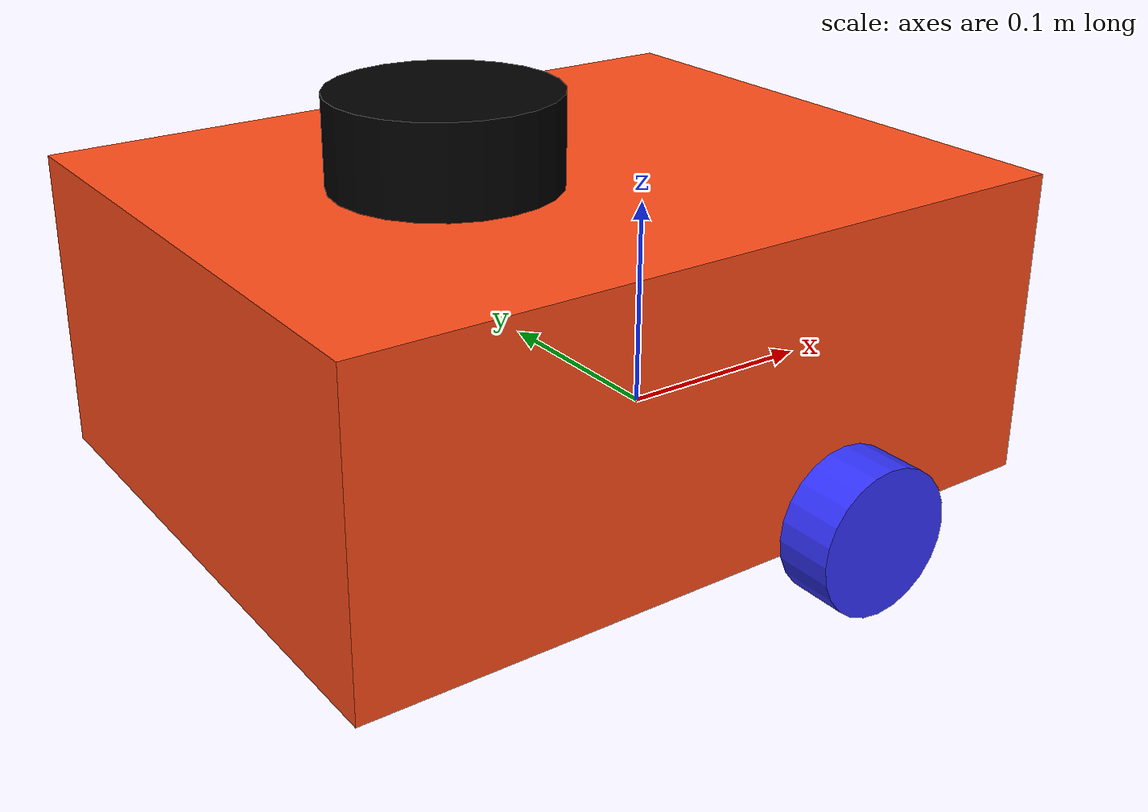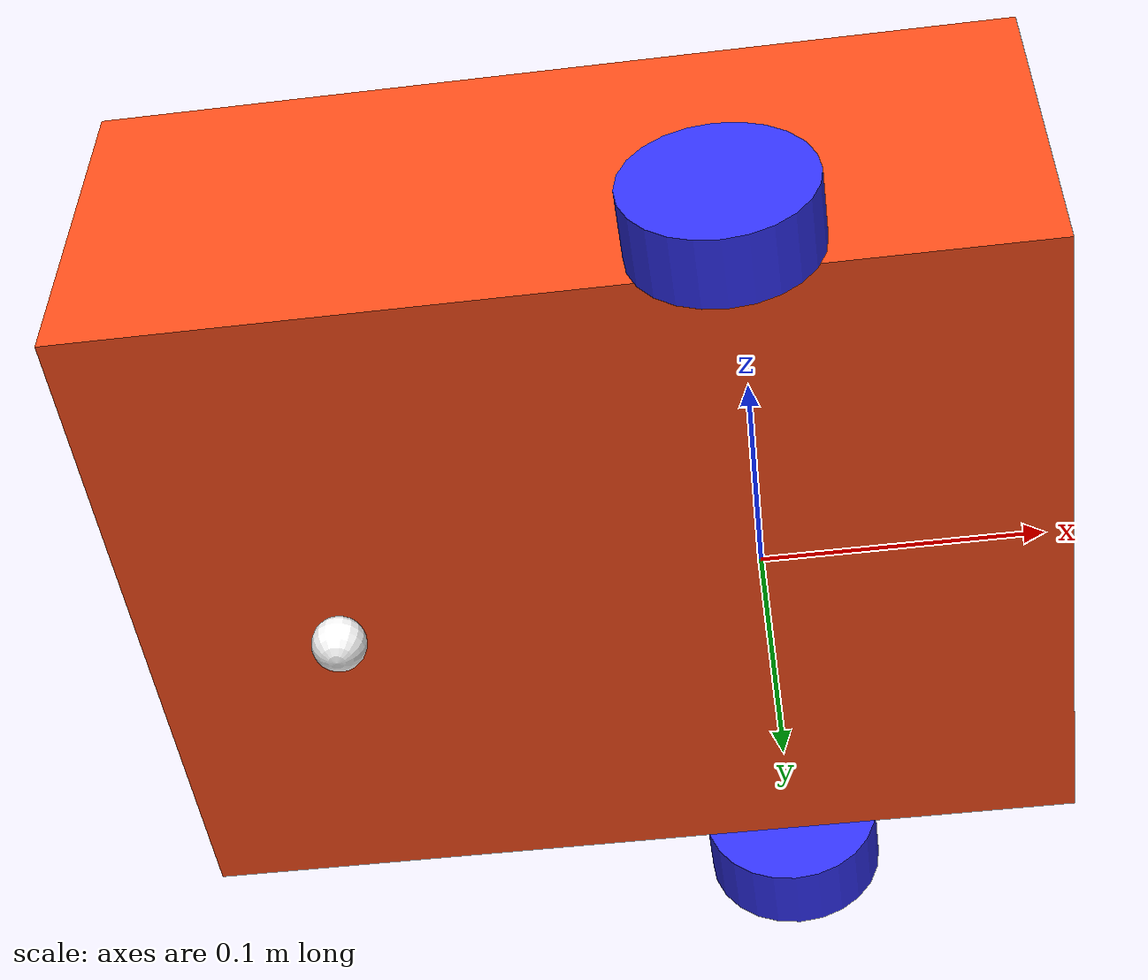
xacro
<?xml version="1.0"?>
<robot xmlns:xacro="http://www.ros.org/wiki/xacro" name="wheel_box">
    <xacro:arg name="robot_name" default="X" />
    <xacro:arg name="use_ros2_control" default="true" />
    <xacro:arg name="sim_mode" default="false" />

    <xacro:macro name="wheel_box" params='robot_name sim_mode use_ros2_control'>

        <xacro:include filename="wheel_box/robot_core.xacro" />

        <xacro:if value="$(arg use_ros2_control)">
            <xacro:include filename="wheel_box/ros2_control.xacro" />
        </xacro:if>
        <xacro:unless value="$(arg use_ros2_control)">
            <xacro:include filename="wheel_box/gazebo_control.xacro" />
        </xacro:unless>
        <xacro:include filename="wheel_box/lidar.xacro" />
        <xacro:include filename="wheel_box/depth_camera.xacro" />
        <xacro:include filename="wheel_box/depth_camera2.xacro" />

    </xacro:macro>
    <xacro:wheel_box robot_name="$(arg robot_name)" sim_mode="$(arg sim_mode)" use_ros2_control="$(arg use_ros2_control)" />

</robot>

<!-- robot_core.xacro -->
<robot name='wheel_box'  xmlns:xacro="http://www.ros.org/wiki/xacro" >

    <xacro:include filename="inertial_macros.xacro"/>

    <xacro:property name="chassis_length" value="0.335"/>
    <xacro:property name="chassis_width" value="0.265"/>
    <xacro:property name="chassis_height" value="0.138"/>
    <xacro:property name="chassis_mass" value="1.0"/>
    <xacro:property name="wheel_radius" value="0.033"/>
    <xacro:property name="wheel_thickness" value="0.026"/>
    <xacro:property name="wheel_mass" value="0.05"/>
    <xacro:property name="wheel_offset_x" value="0.226"/>
    <xacro:property name="wheel_offset_y" value="0.1485"/>
    <xacro:property name="wheel_offset_z" value="0.01"/>
    <xacro:property name="caster_wheel_radius" value="0.01"/>
    <xacro:property name="caster_wheel_mass" value="0.01"/>
    <xacro:property name="caster_wheel_offset_x" value="0.075"/>
    <xacro:property name="caster_wheel_offset_z" value="${wheel_offset_z - wheel_radius + caster_wheel_radius}"/>

    <material name="white">
        <color rgba="1 1 1 1" />
    </material>

    <material name="orange">
        <color rgba="1 0.3 0.1 1"/>
    </material>

    <material name="blue">
        <color rgba="0.2 0.2 1 1"/>
    </material>

    <material name="black">
        <color rgba="0 0 0 1"/>
    </material>

    <material name="red">
        <color rgba="1 0 0 1"/>
    </material>

    <!-- BASE LINK -->

    <link name="${robot_name}/base_link">

    </link>

    <!-- BASE_FOOTPRINT LINK use for SLAM!!!!! -->

    <joint name="${robot_name}/base_footprint_joint" type="fixed">
        <parent link="${robot_name}/base_link"/>
        <child link="${robot_name}/base_footprint"/>
        <origin xyz="0 0 0" rpy="0 0 0"/>
    </joint>

    <link name="${robot_name}/base_footprint">
    </link>

    <!-- CHASSIS LINK -->

    <joint name="${robot_name}/chassis_joint" type="fixed">
        <parent link="${robot_name}/base_link"/>
        <child link="${robot_name}/chassis"/>
        <origin xyz="${-wheel_offset_x} 0 ${-wheel_offset_z}"/>
    </joint>

    <link name="${robot_name}/chassis">
        <visual>
            <origin xyz="${chassis_length/2} 0 ${chassis_height/2}"/>
            <geometry>
                <box size="${chassis_length} ${chassis_width} ${chassis_height}"/>
            </geometry>
            <material name="orange"/>
        </visual>
        <collision>
            <origin xyz="${chassis_length/2} 0 ${chassis_height/2}"/>
            <geometry>
                <box size="${chassis_length} ${chassis_width} ${chassis_height}"/>
            </geometry>
        </collision>
        <xacro:inertial_box mass="0.5" x="${chassis_length}" y="${chassis_width}" z="${chassis_height}">
            <origin xyz="${chassis_length/2} 0 ${chassis_height/2}" rpy="0 0 0"/>
        </xacro:inertial_box>
    </link>

    <gazebo reference="${robot_name}/chassis">
        <material>Gazebo/Orange</material>
    </gazebo>

    <!-- LEFT WHEEL LINK -->

    <joint name="${robot_name}/left_wheel_joint" type="continuous">
        <parent link="${robot_name}/base_link"/>
        <child link="${robot_name}/left_wheel"/>
        <origin xyz="0 ${wheel_offset_y} 0" rpy="-${pi/2} 0 0" />
        <axis xyz="0 0 1"/>
    </joint>

    <link name="${robot_name}/left_wheel">
        <visual>
            <geometry>
                <cylinder radius="${wheel_radius}" length="${wheel_thickness}"/>
            </geometry>
            <material name="blue"/>
        </visual>
        <collision>
            <geometry>
                <sphere radius="${wheel_radius}"/>
            </geometry>
        </collision>
        <xacro:inertial_cylinder mass="${wheel_mass}" length="${wheel_thickness}" radius="${wheel_radius}">
            <origin xyz="0 0 0" rpy="0 0 0"/>
        </xacro:inertial_cylinder>
    </link>

    <gazebo reference="${robot_name}/left_wheel">
        <material>Gazebo/Blue</material>
    </gazebo>

    <!-- RIGHT WHEEL LINK -->

    <joint name="${robot_name}/right_wheel_joint" type="continuous">
        <parent link="${robot_name}/base_link"/>
        <child link="${robot_name}/right_wheel"/>
        <origin xyz="0 ${-wheel_offset_y} 0" rpy="${pi/2} 0 0" />
        <axis xyz="0 0 -1"/>
    </joint>

    <link name="${robot_name}/right_wheel">
        <visual>
            <geometry>
                <cylinder radius="${wheel_radius}" length="${wheel_thickness}"/>
            </geometry>
            <material name="blue"/>
        </visual>
        <collision>
            <geometry>
                <sphere radius="${wheel_radius}"/>
            </geometry>
        </collision>
        <xacro:inertial_cylinder mass="${wheel_mass}" length="${wheel_thickness}" radius="${wheel_radius}">
            <origin xyz="0 0 0" rpy="0 0 0"/>
        </xacro:inertial_cylinder>
    </link>

    <gazebo reference="${robot_name}/right_wheel">
        <material>Gazebo/Blue</material>
    </gazebo>

    <!-- CASTER WHEEL LINK -->

    <joint name="${robot_name}/caster_wheel_joint" type="fixed">
        <parent link="${robot_name}/chassis"/>
        <child link="${robot_name}/caster_wheel"/>
        <origin xyz="${caster_wheel_offset_x} 0 ${caster_wheel_offset_z}"/>
    </joint>

    <link name="${robot_name}/caster_wheel">
        <visual>
            <geometry>
                <sphere radius="${caster_wheel_radius}"/>
            </geometry>
            <material name="white"/>
        </visual>
        <collision>
            <geometry>
                <sphere radius="${caster_wheel_radius}"/>
            </geometry>
        </collision>
        <xacro:inertial_sphere mass="${caster_wheel_mass}" radius="${caster_wheel_radius}">
            <origin xyz="0 0 0" rpy="0 0 0"/>
        </xacro:inertial_sphere>
    </link>

    <gazebo reference="${robot_name}/caster_wheel">
        <material>Gazebo/White</material>
        <mu1 value="0.001"/>
        <mu2 value="0.001"/>
    </gazebo>

</robot>

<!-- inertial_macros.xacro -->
<robot name='wheel_box'  xmlns:xacro="http://www.ros.org/wiki/xacro" >

    <!-- Specify some standard inertial calculations https://en.wikipedia.org/wiki/List_of_moments_of_inertia -->
    <!-- These make use of xacro's mathematical functionality -->

    <xacro:macro name="inertial_sphere" params="mass radius *origin">
        <inertial>
            <xacro:insert_block name="origin"/>
            <mass value="${mass}" />
            <inertia ixx="${(2/5) * mass * (radius*radius)}" ixy="0.0" ixz="0.0"
                    iyy="${(2/5) * mass * (radius*radius)}" iyz="0.0"
                    izz="${(2/5) * mass * (radius*radius)}" />
        </inertial>
    </xacro:macro>

    <xacro:macro name="inertial_box" params="mass x y z *origin">
        <inertial>
            <xacro:insert_block name="origin"/>
            <mass value="${mass}" />
            <inertia ixx="${(1/12) * mass * (y*y+z*z)}" ixy="0.0" ixz="0.0"
                    iyy="${(1/12) * mass * (x*x+z*z)}" iyz="0.0"
                    izz="${(1/12) * mass * (x*x+y*y)}" />
        </inertial>
    </xacro:macro>

    <xacro:macro name="inertial_cylinder" params="mass length radius *origin">
        <inertial>
            <xacro:insert_block name="origin"/>
            <mass value="${mass}" />
            <inertia ixx="${(1/12) * mass * (3*radius*radius + length*length)}" ixy="0.0" ixz="0.0"
                    iyy="${(1/12) * mass * (3*radius*radius + length*length)}" iyz="0.0"
                    izz="${(1/2) * mass * (radius*radius)}" />
        </inertial>
    </xacro:macro>

</robot>

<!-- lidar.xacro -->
<robot name='wheel_box'  xmlns:xacro="http://www.ros.org/wiki/xacro" >

    <joint name="${robot_name}/laser_joint" type="fixed">
        <parent link="${robot_name}/chassis"/>
        <child link="${robot_name}/laser_frame"/>
        <origin xyz="0.122 0 0.158" rpy="0 0 0"/>
    </joint>

    <link name="${robot_name}/laser_frame">
        <visual>
            <geometry>
                <cylinder radius="0.05" length="0.04"/>
            </geometry>
            <material name="black"/>
        </visual>
        <collision>
            <geometry>
                <cylinder radius="0.05" length="0.04"/>
            </geometry>
        </collision>
        <xacro:inertial_cylinder mass="0.1" length="0.04" radius="0.05">
            <origin xyz="0 0 0" rpy="0 0 0"/>
        </xacro:inertial_cylinder>
    </link>

    <gazebo reference="${robot_name}/laser_frame">
        <material>Gazebo/Black</material>

        <sensor name="laser" type="ray">
            <pose> 0 0 0 0 0 0 </pose>
            <visualize>false</visualize>
            <update_rate>10</update_rate>
            <ray>
                <scan>
                    <horizontal>
                        <samples>360</samples>
                        <min_angle>-3.14</min_angle>
                        <max_angle>3.14</max_angle>
                    </horizontal>
                </scan>
                <range>
                    <min>0.3</min>
                    <max>12</max>
                </range>
            </ray>
            <plugin name="laser_controller" filename="libgazebo_ros_ray_sensor.so">
                <ros>
                    <argument>~/out:=scan</argument>
                </ros>
                <output_type>sensor_msgs/LaserScan</output_type>
                <frame_name>${robot_name}/laser_frame</frame_name>
            </plugin>
        </sensor>
    </gazebo>

</robot>

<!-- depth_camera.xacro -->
<robot name='wheel_box'  xmlns:xacro="http://www.ros.org/wiki/xacro" >

    <joint name="${robot_name}/camera_joint" type="fixed">
        <parent link="${robot_name}/chassis"/>
        <child link="${robot_name}/camera_link"/>
        <origin xyz="0.305 0 0.08" rpy="0 0 0"/>
    </joint>

    <link name="${robot_name}/camera_link">
        <visual>
            <geometry>
                <box size="0.010 0.03 0.03"/>
            </geometry>
            <material name="red"/>
        </visual>
    </link>

    <joint name="${robot_name}/camera_optical_joint" type="fixed">
        <parent link="${robot_name}/camera_link"/>
        <child link="${robot_name}/camera_link_optical"/>
        <origin xyz="0 0 0" rpy="${-pi/2} 0 ${-pi/2}"/>
    </joint>

    <link name="${robot_name}/camera_link_optical"></link>

    <gazebo reference="${robot_name}/camera_link">
        <material>Gazebo/Red</material>

        <sensor name="camera" type="depth">
            <pose> 0 0 0 0 0 0 </pose>
            <visualize>true</visualize>
            <update_rate>10</update_rate>
            <camera>
                <horizontal_fov>1.089</horizontal_fov>
                <image>
                    <format>B8G8R8</format>
                    <width>640</width>
                    <height>480</height>
                </image>
                <clip>
                    <near>0.05</near>
                    <far>8.0</far>
                </clip>
            </camera>
            <plugin name="camera_controller" filename="libgazebo_ros_camera.so">
                <frame_name>${robot_name}/camera_link_optical</frame_name>
                <min_depth>0.1</min_depth>
                <max_depth>100.0</max_depth>
            </plugin>
        </sensor>
    </gazebo>

</robot>

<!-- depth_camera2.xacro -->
<robot name='wheel_box'  xmlns:xacro="http://www.ros.org/wiki/xacro" >

    <joint name="${robot_name}/scanner_joint" type="fixed">
        <parent link="${robot_name}/chassis"/>
        <child link="${robot_name}/scanner_link"/>
        <origin xyz="0.1675 0.1325 0.08" rpy="0 0 1.5708"/>
    </joint>

    <link name="${robot_name}/scanner_link">
        <visual>
            <geometry>
                <box size="0.010 0.03 0.03"/>
            </geometry>
            <material name="red"/>
        </visual>
    </link>

    <joint name="${robot_name}/scanner_optical_joint" type="fixed">
        <parent link="${robot_name}/scanner_link"/>
        <child link="${robot_name}/scanner_link_optical"/>
        <origin xyz="0 0 0" rpy="${-pi/2} 0 ${-pi/2}"/>
    </joint>

    <link name="${robot_name}/scanner_link_optical"></link>

    <gazebo reference="${robot_name}/scanner_link">
        <material>Gazebo/Red</material>

        <sensor name="scanner" type="depth">
            <pose> 0 0 0 0 0 0 </pose>
            <visualize>true</visualize>
            <update_rate>10</update_rate>
            <camera>
                <horizontal_fov>1.089</horizontal_fov>
                <image>
                    <format>B8G8R8</format>
                    <width>640</width>
                    <height>480</height>
                </image>
                <clip>
                    <near>0.05</near>
                    <far>8.0</far>
                </clip>
            </camera>
            <plugin name="scanner_controller" filename="libgazebo_ros_camera.so">
                <frame_name>${robot_name}/scanner_link_optical</frame_name>
                <min_depth>0.1</min_depth>
                <max_depth>100.0</max_depth>
            </plugin>
        </sensor>
    </gazebo>

</robot>
